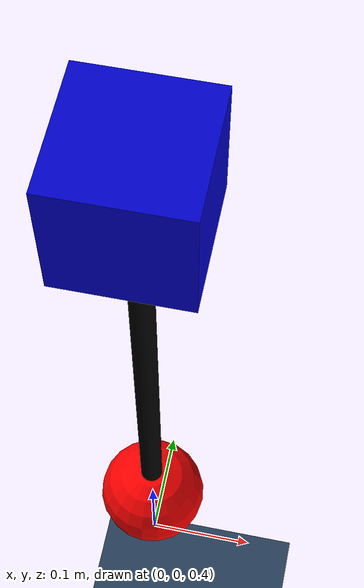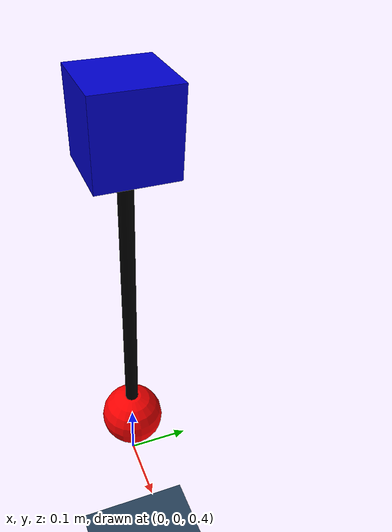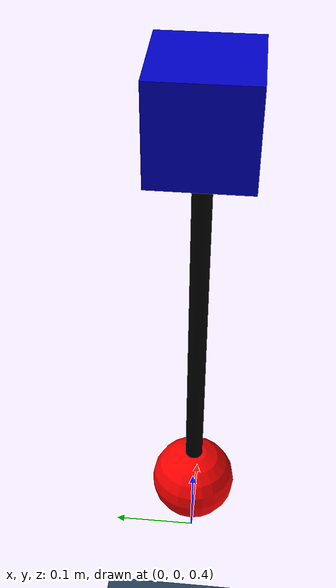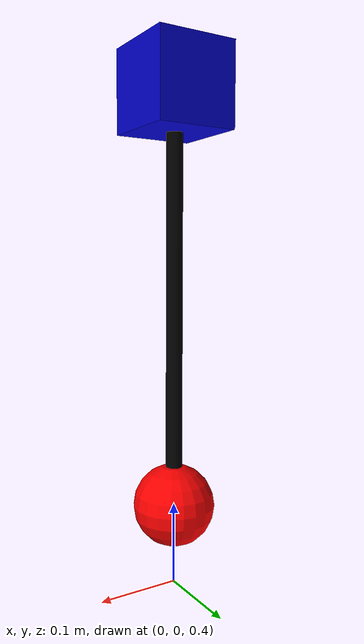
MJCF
<mujoco model="cart pole scene">

    <include file="model.xml"/>

    <statistic center="0 -1 0.3" extent="2"/>

    <visual>
        <headlight diffuse="0.6 0.6 0.6" ambient="0.1 0.1 0.1" specular="0 0 0"/>
        <rgba haze="0.15 0.25 0.35 1"/>
        <global azimuth="-90" elevation="-20"/>
    </visual>

    <asset>
        <texture type="skybox" builtin="gradient" rgb1="0.3 0.5 0.7" rgb2="0 0 0" width="512" height="3072"/>
        <texture type="2d" name="groundplane" builtin="checker" mark="edge" rgb1="0.2 0.3 0.4" rgb2="0.1 0.2 0.3"
            markrgb="0.8 0.8 0.8" width="300" height="300"/>
        <material name="groundplane" texture="groundplane" texuniform="true" texrepeat="5 5" reflectance="0.2"/>
    </asset>

    <worldbody>
        <light pos="0 0 1.5" dir="0 0 -1" directional="true"/>
        <geom name="floor" size="0 0 0.05" type="plane" material="groundplane"/>
    </worldbody>

</mujoco>

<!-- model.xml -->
<mujoco model="cart_pole">
    <compiler angle="radian" autolimits="true"/>
    <statistic meansize="0.262151" extent="0.636603" center="0 0 -0.231699"/>
    <worldbody>
        <body name="cart" pos="0 0 1">
            <inertial pos="0 0 0" mass="0.5" diaginertia="0.0166667 0.0166667 0.0166667"/>
            <joint name="cart_joint" pos="0 0 0" axis="1 0 0" type="slide" range="-100 100"/>
            <geom size="0.05 0.05 0.05" type="box" rgba="0 0 0.8 1"/>
            <body name="pole">
                <inertial pos="0 0 -0.5" mass="0.1" diaginertia="0.0066 0.0066 0.0066"/>
                <joint name="pole_joint" pos="0 0 0" axis="0 1 0" range="-600.283 600.283"/>
                <geom size="0.01 0.25" pos="0 0 -0.25" type="cylinder" rgba="0 0 0 1"/>
                <geom size="0.05" pos="0 0 -0.5" rgba="1 0 0 1"/>
            </body>
        </body>
    </worldbody>

    <actuator>
        <motor joint="cart_joint"/>
    </actuator>
</mujoco>
